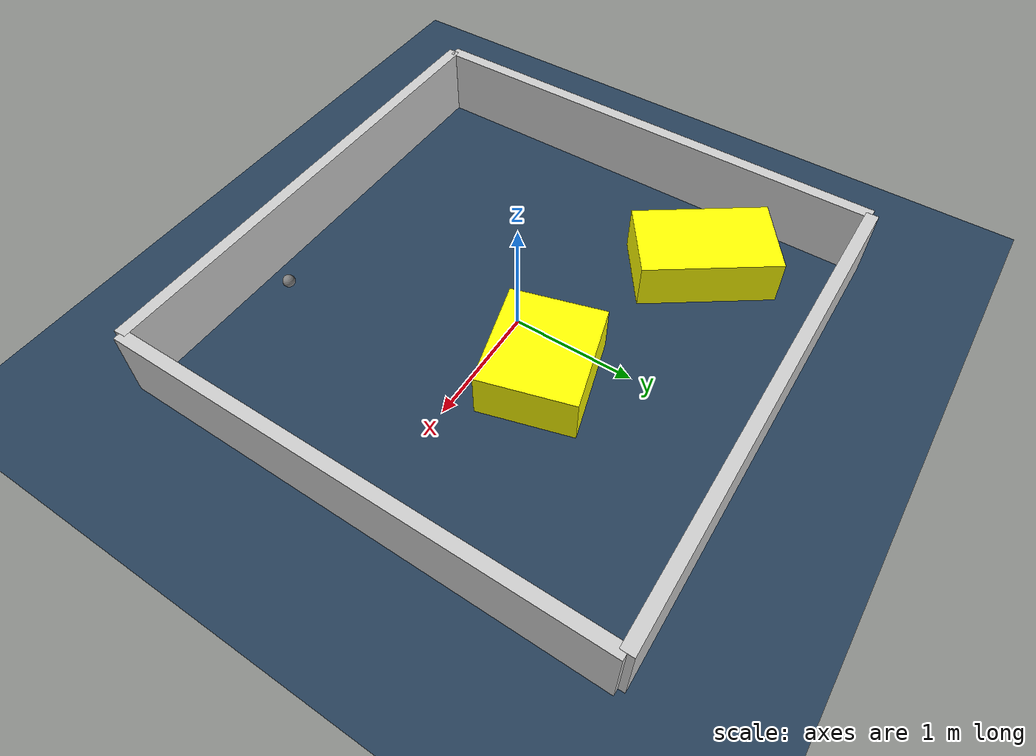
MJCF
<?xml version="1.0" ?>
<mujoco model="generated_environment">
  <option timestep="0.01" integrator="RK4" cone="elliptic"/>
  <default>
    <geom density="1"/>
  </default>
  <asset>
    <texture builtin="gradient" height="3072" rgb1="0.3 0.5 0.7" rgb2="0 0 0" type="skybox" width="512"/>
    <texture builtin="checker" height="300" mark="edge" markrgb="0.8 0.8 0.8" name="groundplane" rgb1="0.2 0.3 0.4" rgb2="0.1 0.2 0.3" type="2d" width="300"/>
    <material name="groundplane" reflectance="0.2" texrepeat="5 5" texture="groundplane" texuniform="true"/>
    <material name="robot" rgba="0.0 1.0 0.0 1"/>
  </asset>
  <worldbody>
    <light dir="0 0 -1" directional="true" pos="0 0 1.5"/>
    <geom condim="4" friction="1.0 0.005 0.001" material="groundplane" name="floor" size="0 0 0.05" type="plane"/>
    <body name="walls">
      <geom name="wall_1" condim="4" pos="-2.0 0.0 0.3" rgba="0.800000011920929 0.800000011920929 0.800000011920929 1.0" size="0.05 2.0 0.3" type="box"/>
      <geom name="wall_2" condim="4" pos="2.0 0.0 0.3" rgba="0.800000011920929 0.800000011920929 0.800000011920929 1.0" size="0.05 2.0 0.3" type="box"/>
      <geom name="wall_3" condim="4" pos="0.0 -2.0 0.3" rgba="0.800000011920929 0.800000011920929 0.800000011920929 1.0" size="2.0 0.05 0.3" type="box"/>
      <geom name="wall_4" condim="4" pos="0.0 2.0 0.3" rgba="0.800000011920929 0.800000011920929 0.800000011920929 1.0" size="2.0 0.05 0.3" type="box"/>
    </body>
    <body name="robot">
      <joint name="joint_x" type="slide" pos="0 0 0" axis="1 0 0"/>
      <joint name="joint_y" type="slide" pos="0 0 0" axis="0 1 0"/>
      <geom name="robot" type="sphere" pos="0.7686142135795593 -1.6501417265632747 0.2" size="0.05" mass="5." friction="1.0 0.005 0.0001" condim="4"/>
      <site name="sensor_ball"/>
    </body>
    <body name="obstacle_1_movable">
      <geom name="obstacle_1_movable" condim="4" pos="-1.2626818287257409 0.9649499798514827 0.2" euler="0 0 305.13430903890907" friction="1.0 0.005 0.001" rgba="1 1 0 1" size="0.5578456816329989 0.32753191486761607 0.2" type="box" mass="0.1"/>
      <joint type="free"/>
    </body>
    <body name="obstacle_2_movable">
      <geom name="obstacle_2_movable" condim="4" pos="0.34606400919973823 0.4375756552567527 0.2" euler="0 0 285.6495493992502" friction="1.0 0.005 0.001" rgba="1 1 0 1" size="0.3841537003190375 0.4377928592668544 0.2" type="box" mass="0.1"/>
      <joint type="free"/>
    </body>
  </worldbody>
  <actuator>
    <motor name="actuator_x" joint="joint_x" gear="1" ctrlrange="-1 1"/>
    <motor name="actuator_y" joint="joint_y" gear="1" ctrlrange="-1 1"/>
  </actuator>
</mujoco>
